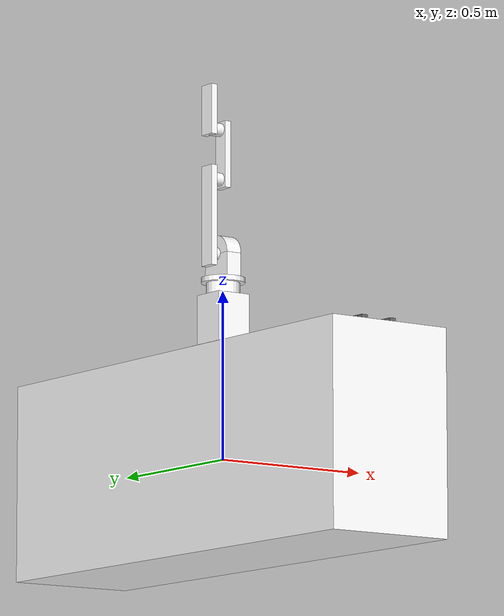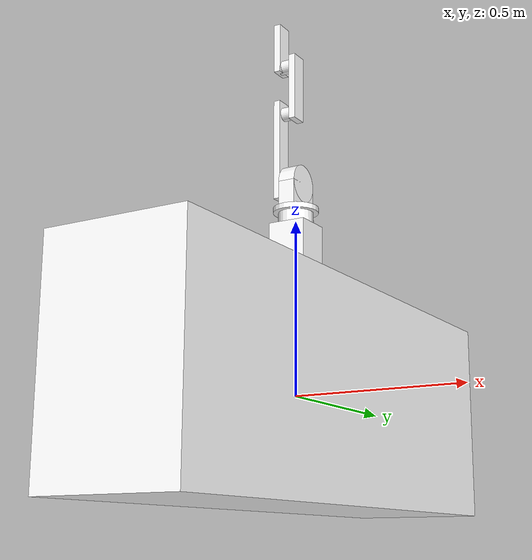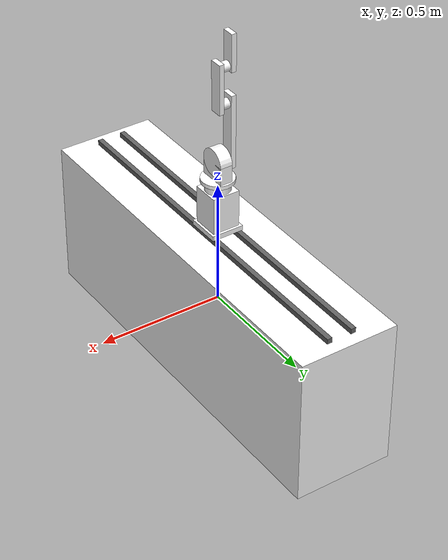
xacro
<?xml version="1.0"?>
<robot name="linear_slide_rail" xmlns:xacro="http://ros.org/wiki/xacro">

    <xacro:property name="pi" value="3.1415" />
    <xacro:property name="base_width" value="0.4" />
    <xacro:property name="base_length" value="1.6" />
    <xacro:property name="base_height" value="0.6" />
    <xacro:property name="slide_rail_width" value="0.02" />
    <xacro:property name="slide_rail_length" value="1.5" />
    <xacro:property name="slide_rail_height" value="0.02" />
    <xacro:property name="slide_block_width" value="0.13" />
    <xacro:property name="slide_block_length" value="0.13" />
    <xacro:property name="slide_block_height" value="0.02" />

    <xacro:property name="j2_block1_width" value="0.11" />
    <xacro:property name="j2_block1_height" value="0.15" />

    <xacro:property name="j2_block2_radius" value="0.05" />
    <xacro:property name="j2_block2_height" value="0.07" />

    <xacro:property name="j2_block3_radius" value="0.065" />
    <xacro:property name="j2_block3_height" value="0.015" />

    <xacro:property name="j2_block4_width" value="0.05" />
    <xacro:property name="j2_block4_length" value="0.11"/>
    <xacro:property name="j2_block4_height" value="0.07"/>

    <xacro:property name="j2_block5_radius" value="0.055"/>
    <xacro:property name="j2_block5_height" value="0.05"/>

    <xacro:property name="j3_block1_radius" value="0.02"/>
    <xacro:property name="j3_block1_height" value="0.05"/>

    <xacro:property name="j3_block2_width" value="0.02"/>
    <xacro:property name="j3_block2_length" value="0.05"/>
    <xacro:property name="j3_block2_height" value="0.3"/>

    <xacro:property name="j4_block1_radius" value="0.02"/>
    <xacro:property name="j4_block1_height" value="0.05"/>

    <xacro:property name="j4_block2_width" value="0.02"/>
    <xacro:property name="j4_block2_length" value="0.05"/>
    <xacro:property name="j4_block2_height" value="0.20"/>

    <xacro:property name="j5_block1_radius" value="0.02"/>
    <xacro:property name="j5_block1_height" value="0.05"/>

    <xacro:property name="j5_block2_width" value="0.02"/>
    <xacro:property name="j5_block2_length" value="0.05"/>
    <xacro:property name="j5_block2_height" value="0.15"/>

    <!-- include gazebo file -->
    <xacro:include filename="$(find robot_description)/urdf/linear_slide_rail.gazebo" />

    <material name="gray">
        <color rgba="${100/255} ${100/255} ${100/255} 1.0"/>
    </material>

    <material name="white">
        <color rgba="${255/255} ${255/255} ${255/255} 1.0"/>
    </material>

    <material name="blue">
        <color rgba="${0/255} ${0/255} ${230/255} 1.0"/>
    </material>

    <xacro:macro name="default_inertial" params="mass">
        <inertial>
            <mass value="${mass}" />
            <inertia ixx="1.0" ixy="0.0" ixz="0.0" iyy="1.0" iyz="0.0" izz="1.0" />
        </inertial>
    </xacro:macro>

    <link name="base_link">
        <visual>
            <geometry>
                <box size="${base_width} ${base_length} ${base_height}" />
            </geometry>
            <material name="white"/>
        </visual>
        <collision>
            <geometry>
                <box size="${base_width} ${base_length} ${base_height}" />
            </geometry>
        </collision>
        <xacro:default_inertial mass="10"/>
    </link>

    <xacro:macro name="slide_rail" params="prefix reflect">
        <link name="${prefix}_slide_rail">
            <visual>
                <geometry>
                    <box size="${slide_rail_width} ${slide_rail_length} ${slide_rail_height}" />
                </geometry>
                <origin xyz="0 0 ${slide_rail_height/2}" rpy="0 0 0" />
                <material name="gray"/>
            </visual>
            <collision>
                <geometry>
                    <box size="${slide_rail_width} ${slide_rail_length} ${slide_rail_height}" />
                </geometry>
                <origin xyz="0 0 ${slide_rail_height/2}" rpy="0 0 0" />
            </collision>
            <xacro:default_inertial mass="1"/>
        </link>
        <joint name="base_to_${prefix}_slide_rail" type="fixed">
            <parent link="base_link"/>
            <child link="${prefix}_slide_rail"/>
            <origin xyz="${reflect} 0 ${base_height/2}" rpy="0 0 0"/>
        </joint>
    </xacro:macro>

    <xacro:slide_rail prefix="r" reflect="0.05"/>
    <xacro:slide_rail prefix="l" reflect="-0.05"/>

    <joint name="slide_rail_joint" type="prismatic">
        <parent link="r_slide_rail"/>
        <child link="slide_block_base"/>
        <limit effort="10.0" lower="-0.7" upper="0.7" velocity="0.5"/>
        <origin xyz="-0.05 0 ${slide_rail_height}"/>
        <dynamics damping="0.0" friction="0.0"/>
        <axis xyz="0 1 0"/>
    </joint>
    <link name="slide_block_base">
        <visual>
            <geometry>
                <box size="${slide_block_width} ${slide_block_length} ${slide_block_height}"/>
            </geometry>
            <origin xyz="0 0 ${slide_block_height/2}"/>
            <material name="white"/>
        </visual>
        <collision>
            <geometry>
                <box size="${slide_block_width} ${slide_block_length} ${slide_block_height}"/>
            </geometry>
            <origin xyz="0 0 ${slide_block_height/2}"/>
        </collision>
        <xacro:default_inertial mass="0.05"/>
    </link>

    <joint name="slide_block_to_j2block1" type="fixed">
        <parent link="slide_block_base"/>
        <child link="j2_block1"/>
        <origin xyz="0 0 ${slide_block_height}"/>
    </joint>
    <link name="j2_block1">
        <visual>
            <geometry>
                <box size="${j2_block1_width} ${j2_block1_width} ${j2_block1_height}"/>
            </geometry>
            <origin xyz="0 0 ${j2_block1_height/2}"/>
            <material name="white"/>
        </visual>
        <collision>
            <geometry>
                <box size="${j2_block1_width} ${j2_block1_width} ${j2_block1_height}"/>
            </geometry>
            <origin xyz="0 0 ${j2_block1_height/2}"/>
        </collision>
        <xacro:default_inertial mass="0.05"/>
    </link>

    <joint name="base_arm_joint" type="revolute">
        <parent link="j2_block1"/>
        <child link="j2_block2"/>
        <limit effort="1000.0" lower="${-pi*3/4}" upper="${pi*3/4}" velocity="0.5"/>
        <origin xyz="0 0 ${j2_block1_height}"/>
        <dynamics damping="0.0" friction="0.0"/>
        <axis xyz="0 0 1"/>
    </joint>
    <link name="j2_block2">
        <visual>
            <geometry>
                <cylinder radius="${j2_block2_radius}" length="${j2_block2_height}"/>
            </geometry>
            <origin xyz="0 0 0" rpy="0 0 0"/>
            <material name="white"/>
        </visual>
        <collision>
            <geometry>
                <cylinder radius="${j2_block2_radius}" length="${j2_block2_height}"/>
            </geometry>
            <origin xyz="0 0 0" rpy="0 0 0"/>
        </collision>
        <xacro:default_inertial mass="0.05"/>
    </link>

    <joint name="j2block2_to_3" type="fixed">
        <parent link="j2_block2"/>
        <child link="j2_block3"/>
        <origin xyz="0 0 ${j2_block2_height/2}"/>
    </joint>
    <link name="j2_block3">
        <visual>
            <geometry>
                <cylinder radius="${j2_block3_radius}" length="${j2_block3_height}"/>
            </geometry>
            <origin xyz="0 0 ${j2_block3_height/2}" rpy="0 0 0"/>
            <material name="white"/>
        </visual>
        <collision>
            <geometry>
                <cylinder radius="${j2_block3_radius}" length="${j2_block3_height}"/>
            </geometry>
            <origin xyz="0 0 ${j2_block3_height/2}" rpy="0 0 0"/>
        </collision>
        <xacro:default_inertial mass="0.05"/>
    </link>

    <joint name="j2block3_to_4" type="fixed">
        <parent link="j2_block3"/>
        <child link="j2_block4"/>
        <origin xyz="0 0 ${j2_block3_height}"/>
    </joint>
    <link name="j2_block4">
        <visual>
            <geometry>
                <box size="${j2_block4_width} ${j2_block4_length} ${j2_block4_height}"/>
            </geometry>
            <origin xyz="0 0 ${j2_block4_height/2}" rpy="0 0 0"/>
            <material name="white"/>
        </visual>
        <collision>
            <geometry>
                <box size="${j2_block4_width} ${j2_block4_length} ${j2_block4_height}"/>
            </geometry>
            <origin xyz="0 0 ${j2_block4_height/2}" rpy="0 0 0"/>
        </collision>
        <xacro:default_inertial mass="0.05"/>
    </link>

    <joint name="j2block4_to_5" type="fixed">
        <parent link="j2_block4"/>
        <child link="j2_block5"/>
        <origin xyz="0 0 ${j2_block4_height}"/>
    </joint>
    <link name="j2_block5">
        <visual>
            <geometry>
                <cylinder radius="${j2_block5_radius}" length="${j2_block5_height}"/>
            </geometry>
            <origin xyz="0 0 0" rpy="0 ${pi/2} 0"/>
            <material name="white"/>
        </visual>
        <collision>
            <geometry>
                <cylinder radius="${j2_block5_radius}" length="${j2_block5_height}"/>
            </geometry>
            <origin xyz="0 0 0" rpy="0 ${pi/2} 0"/>
        </collision>
        <xacro:default_inertial mass="0.05"/>
    </link>

    <joint name="arm_2_joint" type="revolute">
        <parent link="j2_block5"/>
        <child link="j3_block1"/>
        <limit effort="1000.0" lower="${-pi*3/4}" upper="${pi*3/4}" velocity="0.5"/>
        <origin xyz="0 0 0"/>
        <dynamics damping="0.0" friction="0.0"/>
        <axis xyz="1 0 0"/>
    </joint>
    <link name="j3_block1">
        <visual>
            <geometry>
                <cylinder radius="${j3_block1_radius}" length="${j3_block1_height}"/>
            </geometry>
            <origin xyz="${-j3_block1_height/2} 0 0" rpy="0 ${pi/2} 0"/>
            <material name="white"/>
        </visual>
        <collision>
            <geometry>
                <cylinder radius="${j3_block1_radius}" length="${j3_block1_height}"/>
            </geometry>
            <origin xyz="${-j3_block1_height/2} 0 0" rpy="0 ${pi/2} 0"/>
        </collision>
        <xacro:default_inertial mass="0.05"/>
    </link>

    <joint name="j3block1_to_2" type="fixed">
        <parent link="j3_block1"/>
        <child link="j3_block2"/>
        <origin xyz="${-j3_block1_height} 0 0"/>
    </joint>
    <link name="j3_block2">
        <visual>
            <geometry>
                <box size="${j3_block2_width} ${j3_block2_length} ${j3_block2_height}"/>
            </geometry>
            <origin xyz="0 0 ${j3_block2_height*3/8}" rpy="0 0 0"/>
            <material name="white"/>
        </visual>
        <collision>
            <geometry>
                <box size="${j3_block2_width} ${j3_block2_length} ${j3_block2_height}"/>
            </geometry>
            <origin xyz="0 0 ${j3_block2_height*3/8}" rpy="0 0 0"/>
        </collision>
        <xacro:default_inertial mass="0.05"/>
    </link>

    <joint name="arm_3_joint" type="revolute">
        <parent link="j3_block2"/>
        <child link="j4_block1"/>
        <limit effort="1000.0" lower="${-pi*3/4}" upper="${pi*3/4}" velocity="0.5"/>
        <origin xyz="0 0 ${j3_block2_height*6/8}"/>
        <dynamics damping="0.0" friction="0.0"/>
        <axis xyz="1 0 0"/>
    </joint>
    <link name="j4_block1">
        <visual>
            <geometry>
                <cylinder radius="${j4_block1_radius}" length="${j4_block1_height}"/>
            </geometry>
            <origin xyz="${j4_block1_height/2} 0 0" rpy="0 ${pi/2} 0"/>
            <material name="white"/>
        </visual>
        <collision>
            <geometry>
                <cylinder radius="${j4_block1_radius}" length="${j4_block1_height}"/>
            </geometry>
            <origin xyz="${j4_block1_height/2} 0 0" rpy="0 ${pi/2} 0"/>
        </collision>
        <xacro:default_inertial mass="0.05"/>
    </link>

    <joint name="j4block1_to_2" type="fixed">
        <parent link="j4_block1"/>
        <child link="j4_block2"/>
        <origin xyz="${j4_block1_height} 0 0"/>
    </joint>
    <link name="j4_block2">
        <visual>
            <geometry>
                <box size="${j4_block2_width} ${j4_block2_length} ${j4_block2_height}"/>
            </geometry>
            <origin xyz="0 0 ${j4_block2_height*3/8}" rpy="0 0 0"/>
            <material name="white"/>
        </visual>
        <collision>
            <geometry>
                <box size="${j4_block2_width} ${j4_block2_length} ${j4_block2_height}"/>
            </geometry>
            <origin xyz="0 0 ${j4_block2_height*3/8}" rpy="0 0 0"/>
        </collision>
        <xacro:default_inertial mass="0.05"/>
    </link>

    <joint name="arm_4_joint" type="revolute">
        <parent link="j4_block2"/>
        <child link="j5_block1"/>
        <limit effort="1000.0" lower="${-pi*3/4}" upper="${pi*3/4}" velocity="0.5"/>
        <origin xyz="0 0 ${j4_block2_height*6/8}"/>
        <dynamics damping="0.0" friction="0.0"/>
        <axis xyz="1 0 0"/>
    </joint>
    <link name="j5_block1">
        <visual>
            <geometry>
                <cylinder radius="${j5_block1_radius}" length="${j5_block1_height}"/>
            </geometry>
            <origin xyz="${-j5_block1_height/2} 0 0" rpy="0 ${pi/2} 0"/>
            <material name="white"/>
        </visual>
        <collision>
            <geometry>
                <cylinder radius="${j5_block1_radius}" length="${j5_block1_height}"/>
            </geometry>
            <origin xyz="${-j5_block1_height/2} 0 0" rpy="0 ${pi/2} 0"/>
        </collision>
        <xacro:default_inertial mass="0.05"/>
    </link>

    <joint name="j5block1_to_2" type="fixed">
        <parent link="j5_block1"/>
        <child link="j5_block2"/>
        <origin xyz="${-j5_block1_height} 0 0"/>
    </joint>
    <link name="j5_block2">
        <visual>
            <geometry>
                <box size="${j5_block2_width} ${j5_block2_length} ${j5_block2_height}"/>
            </geometry>
            <origin xyz="0 0 ${j5_block2_height*3/8}" rpy="0 0 0"/>
            <material name="white"/>
        </visual>
        <collision>
            <geometry>
                <box size="${j5_block2_width} ${j5_block2_length} ${j5_block2_height}"/>
            </geometry>
            <origin xyz="0 0 ${j5_block2_height*3/8}" rpy="0 0 0"/>
        </collision>
        <xacro:default_inertial mass="0.05"/>
    </link>

    <!-- transmission -->
    <transmission name="slide_rail_joint_trans">
        <type>transmission_interface/SimpleTransmission</type>
        <actuator name="slide_rail_joint_motor">
            <hardwareInterface>hardware_interface/EffortJointInterface</hardwareInterface>
            <mechanicalReduction>1</mechanicalReduction>
        </actuator>
        <joint name="slide_rail_joint">
            <hardwareInterface>hardware_interface/EffortJointInterface</hardwareInterface>
        </joint>
    </transmission>

    <transmission name="base_arm_joint_trans">
        <type>transmission_interface/SimpleTransmission</type>
        <joint name="base_arm_joint">
            <hardwareInterface>hardware_interface/EffortJointInterface</hardwareInterface>
        </joint>
        <actuator name="base_arm_joint_motor">
            <hardwareInterface>hardware_interface/EffortJointInterface</hardwareInterface>
            <mechanicalReduction>1</mechanicalReduction>
        </actuator>
    </transmission>

    <transmission name="arm_2_joint_trans">
        <type>transmission_interface/SimpleTransmission</type>
        <joint name="arm_2_joint">
            <hardwareInterface>hardware_interface/EffortJointInterface</hardwareInterface>
        </joint>
        <actuator name="arm_2_joint_motor">
            <hardwareInterface>hardware_interface/EffortJointInterface</hardwareInterface>
            <mechanicalReduction>1</mechanicalReduction>
        </actuator>
    </transmission>

    <transmission name="arm_3_joint_trans">
        <type>transmission_interface/SimpleTransmission</type>
        <joint name="arm_3_joint">
            <hardwareInterface>hardware_interface/EffortJointInterface</hardwareInterface>
        </joint>
        <actuator name="arm_3_joint_motor">
            <hardwareInterface>hardware_interface/EffortJointInterface</hardwareInterface>
            <mechanicalReduction>1</mechanicalReduction>
        </actuator>
    </transmission>

    <transmission name="arm_4_joint_trans">
        <type>transmission_interface/SimpleTransmission</type>
        <joint name="arm_4_joint">
            <hardwareInterface>hardware_interface/EffortJointInterface</hardwareInterface>
        </joint>
        <actuator name="arm_4_joint_motor">
            <hardwareInterface>hardware_interface/EffortJointInterface</hardwareInterface>
            <mechanicalReduction>1</mechanicalReduction>
        </actuator>
    </transmission>

</robot>
